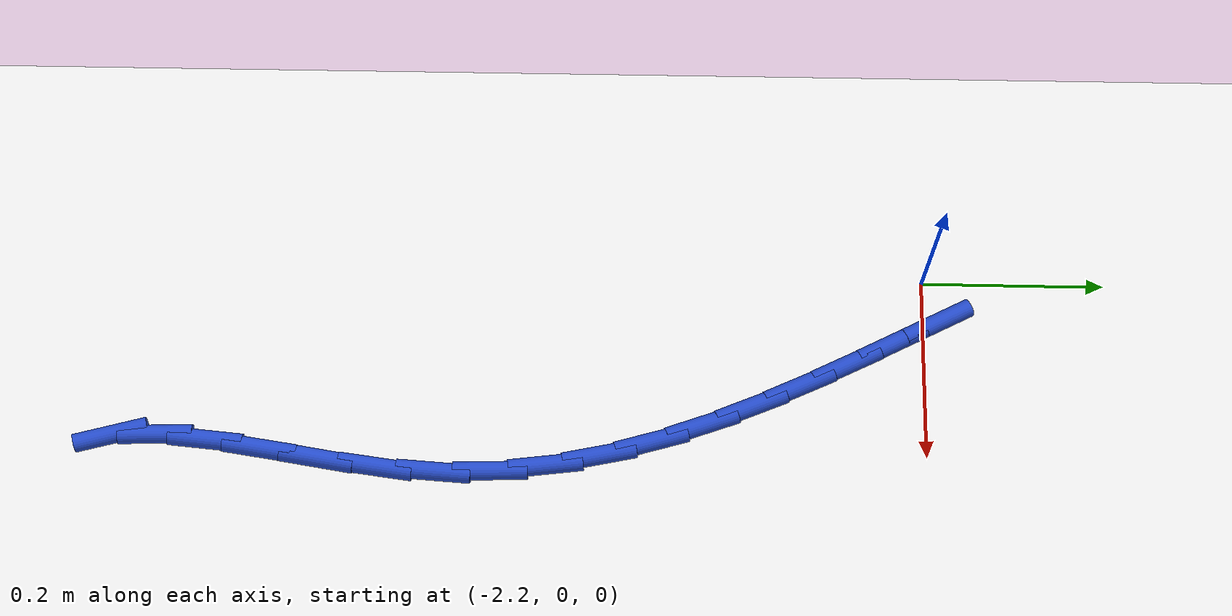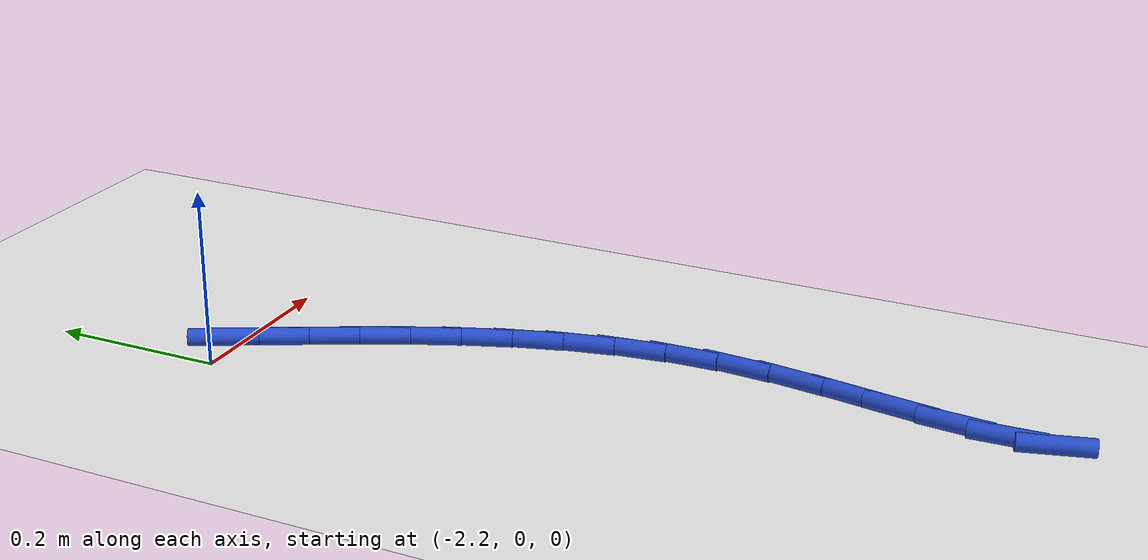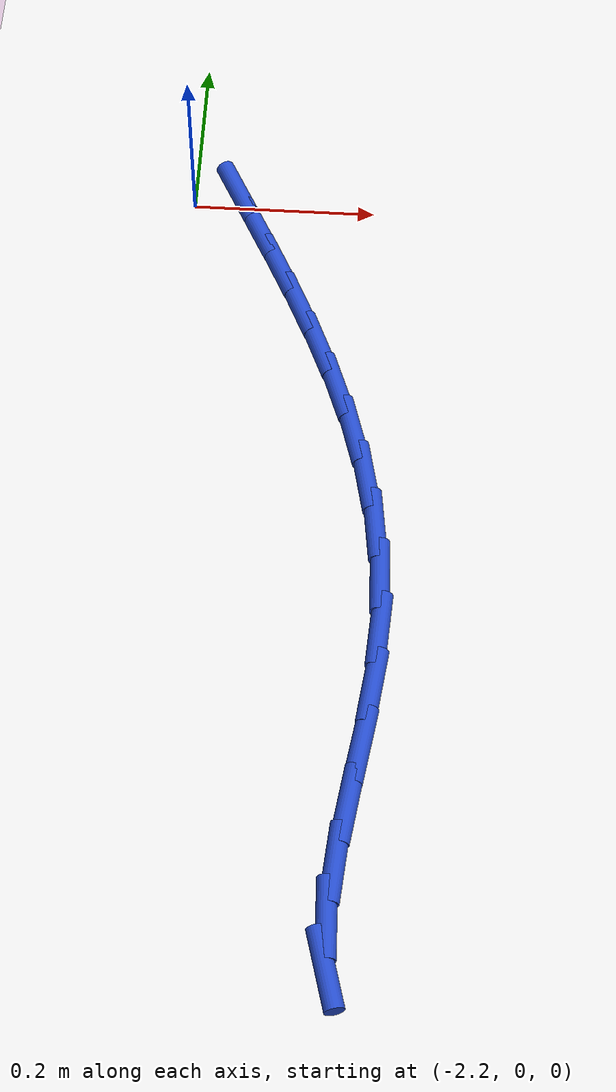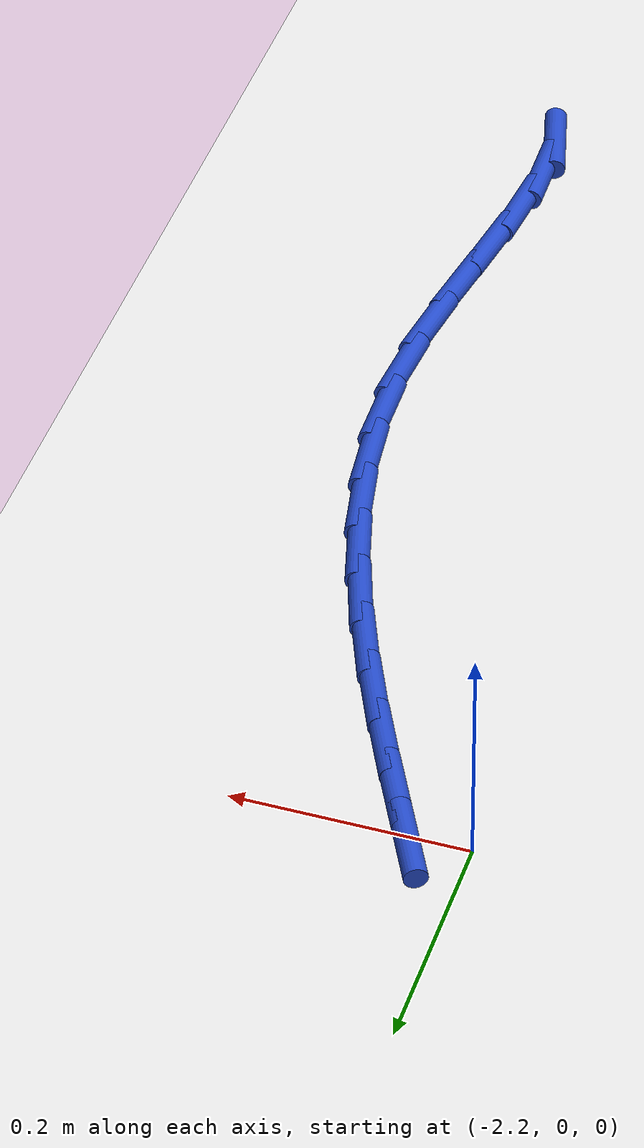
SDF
<sdf version="1.6">
 <world name="default">
  <model name="ground_plane">
   <static>1</static>
   <link name="link">
    <collision name="collision">
     <geometry><plane><normal>0 0 1</normal><size>100 100</size></plane></geometry>
     <surface><friction><ode><mu>100</mu><mu2>50</mu2></ode></friction></surface>
    </collision>
    <visual name="visual">
     <cast_shadows>0</cast_shadows>
     <geometry><plane><normal>0 0 1</normal><size>100 100</size></plane></geometry>
     <material>
      <script><uri>file://media/materials/scripts/gazebo.material</uri><name>Gazebo/WhiteGlow</name></script>
     </material>
    </visual>
   </link>
  </model>
  <model name="line">
   <link name="link_65">
    <pose>-2.1517998081437764 0.014813302705302095 0.01 0 1.57 -1.0981720632666225</pose>
    <collision name="collision">
     <geometry><cylinder><radius>0.01</radius><length>0.08</length></cylinder></geometry>
    </collision>
    <visual name="visual">
     <material>
      <script><name>Gazebo/Blue</name><uri>file://media/materials/scripts/gazebo.material</uri></script>
     </material>
     <geometry><cylinder><radius>0.01</radius><length>0.08</length></cylinder></geometry>
    </visual>
   </link>
   <link name="link_66">
    <pose>-2.1263695299514045 -0.034925960377066835 0.01 0 1.57 -1.1002646449033164</pose>
    <collision name="collision">
     <geometry><cylinder><radius>0.01</radius><length>0.08</length></cylinder></geometry>
    </collision>
    <visual name="visual">
     <material>
      <script><name>Gazebo/Blue</name><uri>file://media/materials/scripts/gazebo.material</uri></script>
     </material>
     <geometry><cylinder><radius>0.01</radius><length>0.08</length></cylinder></geometry>
    </visual>
   </link>
   <link name="link_67">
    <pose>-2.100746695000453 -0.08530164727148261 0.01 0 1.57 -1.1145434114783528</pose>
    <collision name="collision">
     <geometry><cylinder><radius>0.01</radius><length>0.08</length></cylinder></geometry>
    </collision>
    <visual name="visual">
     <material>
      <script><name>Gazebo/Blue</name><uri>file://media/materials/scripts/gazebo.material</uri></script>
     </material>
     <geometry><cylinder><radius>0.01</radius><length>0.08</length></cylinder></geometry>
    </visual>
   </link>
   <link name="link_68">
    <pose>-2.0756403016574687 -0.13645665646667532 0.01 0 1.57 -1.1408401022614967</pose>
    <collision name="collision">
     <geometry><cylinder><radius>0.01</radius><length>0.08</length></cylinder></geometry>
    </collision>
    <visual name="visual">
     <material>
      <script><name>Gazebo/Blue</name><uri>file://media/materials/scripts/gazebo.material</uri></script>
     </material>
     <geometry><cylinder><radius>0.01</radius><length>0.08</length></cylinder></geometry>
    </visual>
   </link>
   <link name="link_69">
    <pose>-2.051759348288997 -0.18853388645137753 0.01 0 1.57 -1.179154029467809</pose>
    <collision name="collision">
     <geometry><cylinder><radius>0.01</radius><length>0.08</length></cylinder></geometry>
    </collision>
    <visual name="visual">
     <material>
      <script><name>Gazebo/Blue</name><uri>file://media/materials/scripts/gazebo.material</uri></script>
     </material>
     <geometry><cylinder><radius>0.01</radius><length>0.08</length></cylinder></geometry>
    </visual>
   </link>
   <link name="link_70">
    <pose>-2.029812833261583 -0.2416762357143218 0.01 0 1.57 -1.229532009642214</pose>
    <collision name="collision">
     <geometry><cylinder><radius>0.01</radius><length>0.08</length></cylinder></geometry>
    </collision>
    <visual name="visual">
     <material>
      <script><name>Gazebo/Blue</name><uri>file://media/materials/scripts/gazebo.material</uri></script>
     </material>
     <geometry><cylinder><radius>0.01</radius><length>0.08</length></cylinder></geometry>
    </visual>
   </link>
   <link name="link_71">
    <pose>-2.010509754941774 -0.29602660274423837 0.01 0 1.57 -1.2918993942366264</pose>
    <collision name="collision">
     <geometry><cylinder><radius>0.01</radius><length>0.08</length></cylinder></geometry>
    </collision>
    <visual name="visual">
     <material>
      <script><name>Gazebo/Blue</name><uri>file://media/materials/scripts/gazebo.material</uri></script>
     </material>
     <geometry><cylinder><radius>0.01</radius><length>0.08</length></cylinder></geometry>
    </visual>
   </link>
   <link name="link_72">
    <pose>-1.994559111696114 -0.3517278860298596 0.01 0 1.57 -1.3658439529024204</pose>
    <collision name="collision">
     <geometry><cylinder><radius>0.01</radius><length>0.08</length></cylinder></geometry>
    </collision>
    <visual name="visual">
     <material>
      <script><name>Gazebo/Blue</name><uri>file://media/materials/scripts/gazebo.material</uri></script>
     </material>
     <geometry><cylinder><radius>0.01</radius><length>0.08</length></cylinder></geometry>
    </visual>
   </link>
   <link name="link_73">
    <pose>-1.9826699018911507 -0.4089229840599172 0.01 0 1.57 -1.4503795549983454</pose>
    <collision name="collision">
     <geometry><cylinder><radius>0.01</radius><length>0.08</length></cylinder></geometry>
    </collision>
    <visual name="visual">
     <material>
      <script><name>Gazebo/Blue</name><uri>file://media/materials/scripts/gazebo.material</uri></script>
     </material>
     <geometry><cylinder><radius>0.01</radius><length>0.08</length></cylinder></geometry>
    </visual>
   </link>
   <link name="link_74">
    <pose>-1.975551123893429 -0.46775479532314335 0.01 0 1.57 -1.5437560731015316</pose>
    <collision name="collision">
     <geometry><cylinder><radius>0.01</radius><length>0.08</length></cylinder></geometry>
    </collision>
    <visual name="visual">
     <material>
      <script><name>Gazebo/Blue</name><uri>file://media/materials/scripts/gazebo.material</uri></script>
     </material>
     <geometry><cylinder><radius>0.01</radius><length>0.08</length></cylinder></geometry>
    </visual>
   </link>
   <link name="link_75">
    <pose>-1.9739117760694946 -0.5283662183082702 0.01 0 1.57 1.5026187734846426</pose>
    <collision name="collision">
     <geometry><cylinder><radius>0.01</radius><length>0.08</length></cylinder></geometry>
    </collision>
    <visual name="visual">
     <material>
      <script><name>Gazebo/Blue</name><uri>file://media/materials/scripts/gazebo.material</uri></script>
     </material>
     <geometry><cylinder><radius>0.01</radius><length>0.08</length></cylinder></geometry>
    </visual>
   </link>
   <link name="link_76">
    <pose>-1.9781706872129738 -0.5907373384865513 0.01 0 1.57 1.4373604719377668</pose>
    <collision name="collision">
     <geometry><cylinder><radius>0.01</radius><length>0.08</length></cylinder></geometry>
    </collision>
    <visual name="visual">
     <material>
      <script><name>Gazebo/Blue</name><uri>file://media/materials/scripts/gazebo.material</uri></script>
     </material>
     <geometry><cylinder><radius>0.01</radius><length>0.08</length></cylinder></geometry>
    </visual>
   </link>
   <link name="link_77">
    <pose>-1.9866160413802416 -0.6536527448636701 0.01 0 1.57 1.4106153272205078</pose>
    <collision name="collision">
     <geometry><cylinder><radius>0.01</radius><length>0.08</length></cylinder></geometry>
    </collision>
    <visual name="visual">
     <material>
      <script><name>Gazebo/Blue</name><uri>file://media/materials/scripts/gazebo.material</uri></script>
     </material>
     <geometry><cylinder><radius>0.01</radius><length>0.08</length></cylinder></geometry>
    </visual>
   </link>
   <link name="link_78">
    <pose>-1.9965864695089823 -0.7153642358878696 0.01 0 1.57 1.4216362474125726</pose>
    <collision name="collision">
     <geometry><cylinder><radius>0.01</radius><length>0.08</length></cylinder></geometry>
    </collision>
    <visual name="visual">
     <material>
      <script><name>Gazebo/Blue</name><uri>file://media/materials/scripts/gazebo.material</uri></script>
     </material>
     <geometry><cylinder><radius>0.01</radius><length>0.08</length></cylinder></geometry>
    </visual>
   </link>
   <link name="link_79">
    <pose>-2.005416238197816 -0.7741211611937345 0.01 0 1.57 1.4781260339842461</pose>
    <collision name="collision">
     <geometry><cylinder><radius>0.01</radius><length>0.08</length></cylinder></geometry>
    </collision>
    <visual name="visual">
     <material>
      <script><name>Gazebo/Blue</name><uri>file://media/materials/scripts/gazebo.material</uri></script>
     </material>
     <geometry><cylinder><radius>0.01</radius><length>0.08</length></cylinder></geometry>
    </visual>
   </link>
   <link name="link_80">
    <pose>-2.0104396140453615 -0.8281728704158529 0.01 0 1.57 -1.540367131026715</pose>
    <collision name="collision">
     <geometry><cylinder><radius>0.01</radius><length>0.08</length></cylinder></geometry>
    </collision>
    <visual name="visual">
     <material>
      <script><name>Gazebo/Blue</name><uri>file://media/materials/scripts/gazebo.material</uri></script>
     </material>
     <geometry><cylinder><radius>0.01</radius><length>0.08</length></cylinder></geometry>
    </visual>
   </link>
   <link name="link_81">
    <pose>-2.00899086365024 -0.8757687131888121 0.01 0 1.57 -1.3082326716661667</pose>
    <collision name="collision">
     <geometry><cylinder><radius>0.01</radius><length>0.08</length></cylinder></geometry>
    </collision>
    <visual name="visual">
     <material>
      <script><name>Gazebo/Blue</name><uri>file://media/materials/scripts/gazebo.material</uri></script>
     </material>
     <geometry><cylinder><radius>0.01</radius><length>0.08</length></cylinder></geometry>
    </visual>
   </link>
  </model>
 </world>
</sdf>
